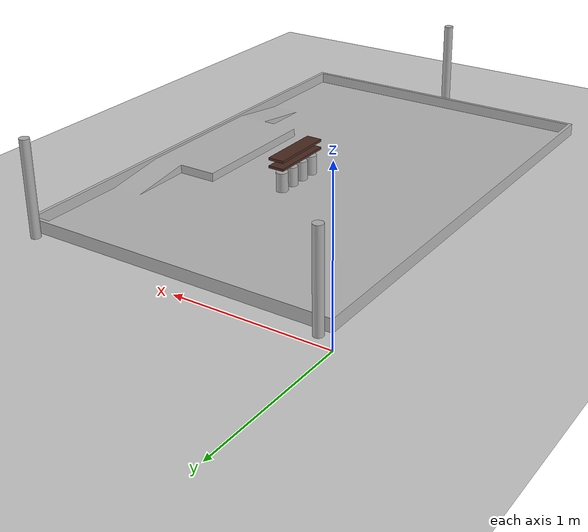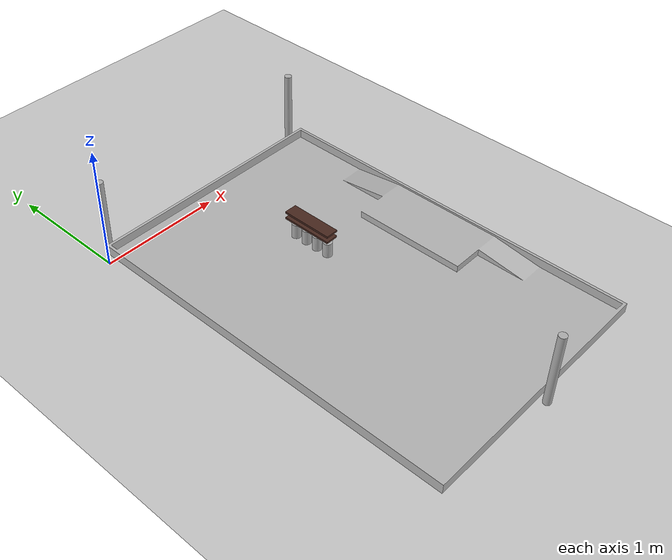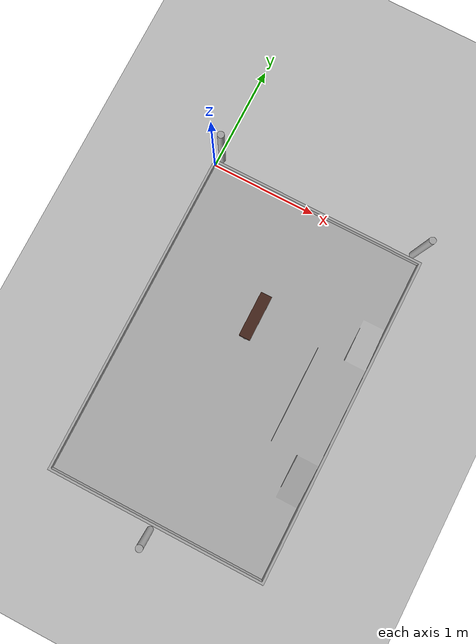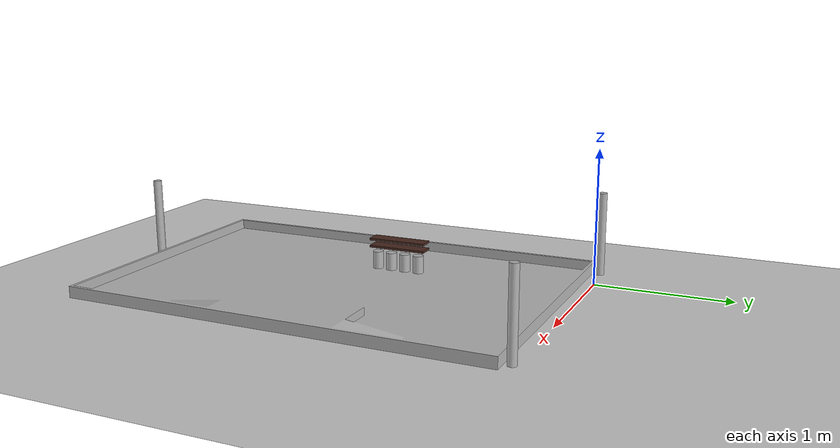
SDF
<sdf version="1.10">
 <world name="empty">
  <scene>
   <shadows>false</shadows>
   <ambient>0.400000006 0.400000006 0.400000006 1</ambient>
   <background>0.699999988 0.699999988 0.699999988 1</background>
  </scene>
  <physics name="1ms" type="ignored">
   <max_step_size>0.001</max_step_size>
   <real_time_factor>1.0</real_time_factor>
   <real_time_update_rate>25</real_time_update_rate>
  </physics>
  <plugin name="gz::sim::systems::Physics" filename="gz-sim-physics-system"/>
  <plugin name="gz::sim::systems::UserCommands" filename="gz-sim-user-commands-system"/>
  <plugin name="gz::sim::systems::SceneBroadcaster" filename="gz-sim-scene-broadcaster-system"/>
  <plugin name="gz::sim::systems::Sensors" filename="gz-sim-sensors-system">
   <render_engine>ogre2</render_engine>
  </plugin>
  <plugin name="gz::sim::systems::Contact" filename="gz-sim-contact-system"/>
  <gravity>0 0 -9.8000000000000007</gravity>
  <magnetic_field>5.5644999999999998e-06 2.2875799999999999e-05 -4.2388400000000002e-05</magnetic_field>
  <atmosphere type="adiabatic"/>
  <model name="ground_plane">
   <static>true</static>
   <link name="link">
    <collision name="collision">
     <geometry><plane><normal>0 0 1</normal><size>100 100</size></plane></geometry>
    </collision>
    <visual name="visual">
     <geometry><plane><normal>0 0 1</normal><size>100 100</size></plane></geometry>
     <material>
      <ambient>0.800000012 0.800000012 0.800000012 1</ambient>
      <diffuse>0.800000012 0.800000012 0.800000012 1</diffuse>
      <specular>0.800000012 0.800000012 0.800000012 1</specular>
     </material>
    </visual>
    <inertial>
     <mass>1</mass>
     <inertia><ixx>1</ixx><ixy>0</ixy><ixz>0</ixz><iyy>1</iyy><iyz>0</iyz><izz>1</izz></inertia>
    </inertial>
   </link>
  </model>
  <model name="box11">
   <pose>0.97 -1.11 0.4 0.0 0.0 1.57</pose>
   <link name="grip_link">
    <inertial>
     <inertia><ixx>2.98e-4</ixx><ixy>0</ixy><ixz>0</ixz><iyy>4.67e-3</iyy><iyz>0</iyz><izz>4.95e-3</izz></inertia>
     <mass>0.35</mass>
    </inertial>
    <collision name="box11_collision"><geometry><box><size>0.4 0.1 0.015</size></box></geometry></collision>
    <visual name="box11_visual">
     <geometry><box><size>0.4 0.1 0.015</size></box></geometry>
     <material>
      <ambient>0.29 0.16 0.12 1</ambient>
      <diffuse>0.29 0.16 0.12 1</diffuse>
      <specular>1 1 1 1</specular>
     </material>
    </visual>
   </link>
   <static>false</static>
  </model>
  <model name="box12">
   <pose>0.97 -1.11 0.45 0.0 0.0 1.57</pose>
   <link name="grip_link">
    <inertial>
     <inertia><ixx>2.98e-4</ixx><ixy>0</ixy><ixz>0</ixz><iyy>4.67e-3</iyy><iyz>0</iyz><izz>4.95e-3</izz></inertia>
     <mass>0.35</mass>
    </inertial>
    <collision name="box12_collision"><geometry><box><size>0.4 0.1 0.015</size></box></geometry></collision>
    <visual name="box12_visual">
     <geometry><box><size>0.4 0.1 0.015</size></box></geometry>
     <material>
      <ambient>0.29 0.16 0.12 1</ambient>
      <diffuse>0.29 0.16 0.12 1</diffuse>
      <specular>1 1 1 1</specular>
     </material>
    </visual>
   </link>
  </model>
  <model name="cylinder11">
   <pose>0.97 -0.97 0.3 0.0 0.0 0.0</pose>
   <link name="grip_link">
    <inertial>
     <inertia><ixx>8.27e-5</ixx><ixy>0</ixy><ixz>0</ixz><iyy>8.27e-5</iyy><iyz>0</iyz><izz>3.564e-5</izz></inertia>
     <mass>0.055</mass>
    </inertial>
    <collision name="cylinder1_collision">
     <geometry><cylinder><radius>0.036</radius><length>0.1195</length></cylinder></geometry>
    </collision>
    <visual name="cylinder1_visual">
     <geometry><cylinder><radius>0.036</radius><length>0.119</length></cylinder></geometry>
     <material>
      <ambient>0.300000012 0.300000012 0.300000012 1</ambient>
      <diffuse>0.699999988 0.699999988 0.699999988 1</diffuse>
      <specular>1 1 1 1</specular>
     </material>
    </visual>
   </link>
   <static>false</static>
  </model>
  <model name="cylinder12">
   <pose>0.97 -1.07 0.3 0.0 0.0 0.0</pose>
   <link name="grip_link">
    <inertial>
     <inertia><ixx>8.27e-5</ixx><ixy>0</ixy><ixz>0</ixz><iyy>8.27e-5</iyy><iyz>0</iyz><izz>3.564e-5</izz></inertia>
     <mass>0.055</mass>
    </inertial>
    <collision name="cylinder2_collision">
     <geometry><cylinder><radius>0.036</radius><length>0.119</length></cylinder></geometry>
    </collision>
    <visual name="cylinder2_visual">
     <geometry><cylinder><radius>0.036</radius><length>0.119</length></cylinder></geometry>
     <material>
      <ambient>0.300000012 0.300000012 0.300000012 1</ambient>
      <diffuse>0.699999988 0.699999988 0.699999988 1</diffuse>
      <specular>1 1 1 1</specular>
     </material>
    </visual>
   </link>
  </model>
  <model name="cylinder13">
   <pose>0.97 -1.17 0.3 0.0 0.0 0.0</pose>
   <link name="grip_link">
    <inertial>
     <inertia><ixx>8.27e-5</ixx><ixy>0</ixy><ixz>0</ixz><iyy>8.27e-5</iyy><iyz>0</iyz><izz>3.564e-5</izz></inertia>
     <mass>0.055</mass>
    </inertial>
    <collision name="cylinder3_collision">
     <geometry><cylinder><radius>0.036</radius><length>0.119</length></cylinder></geometry>
    </collision>
    <visual name="cylinder3_visual">
     <geometry><cylinder><radius>0.036</radius><length>0.119</length></cylinder></geometry>
     <material>
      <ambient>0.300000012 0.300000012 0.300000012 1</ambient>
      <diffuse>0.699999988 0.699999988 0.699999988 1</diffuse>
      <specular>1 1 1 1</specular>
     </material>
    </visual>
   </link>
  </model>
  <model name="cylinder14">
   <pose>0.97 -1.27 0.3 0.0 0.0 0.0</pose>
   <link name="grip_link">
    <inertial>
     <inertia><ixx>8.27e-5</ixx><ixy>0</ixy><ixz>0</ixz><iyy>8.27e-5</iyy><iyz>0</iyz><izz>3.564e-5</izz></inertia>
     <mass>0.055</mass>
    </inertial>
    <collision name="cylinder4_collision">
     <geometry><cylinder><radius>0.036</radius><length>0.119</length></cylinder></geometry>
    </collision>
    <visual name="cylinder4_visual">
     <geometry><cylinder><radius>0.036</radius><length>0.119</length></cylinder></geometry>
     <material>
      <ambient>0.300000012 0.300000012 0.300000012 1</ambient>
      <diffuse>0.699999988 0.699999988 0.699999988 1</diffuse>
      <specular>1 1 1 1</specular>
     </material>
    </visual>
   </link>
  </model>
  <model name="mayak1">
   <pose>1.0 -3.1 0.4 0.0 0.0 0.0</pose>
   <static>true</static>
   <link name="mayak1_link">
    <inertial>
     <inertia><ixx>8.27e-5</ixx><ixy>0</ixy><ixz>0</ixz><iyy>8.27e-5</iyy><iyz>0</iyz><izz>3.564e-5</izz></inertia>
     <mass>5</mass>
    </inertial>
    <collision name="mayak1_collision">
     <geometry><cylinder><radius>0.03</radius><length>0.6</length></cylinder></geometry>
    </collision>
    <visual name="mayak1_visual">
     <geometry><cylinder><radius>0.03</radius><length>0.6</length></cylinder></geometry>
     <material>
      <ambient>0.300000012 0.300000012 0.300000012 1</ambient>
      <diffuse>0.699999988 0.699999988 0.699999988 1</diffuse>
      <specular>1 1 1 1</specular>
     </material>
    </visual>
   </link>
  </model>
  <model name="mayak2">
   <pose>0.05 0.05 0.4 0.0 0.0 0.0</pose>
   <static>true</static>
   <link name="mayak2_link">
    <inertial>
     <inertia><ixx>8.27e-5</ixx><ixy>0</ixy><ixz>0</ixz><iyy>8.27e-5</iyy><iyz>0</iyz><izz>3.564e-5</izz></inertia>
     <mass>5</mass>
    </inertial>
    <collision name="mayak2_collision">
     <geometry><cylinder><radius>0.03</radius><length>0.6</length></cylinder></geometry>
    </collision>
    <visual name="mayak2_visual">
     <geometry><cylinder><radius>0.03</radius><length>0.6</length></cylinder></geometry>
     <material>
      <ambient>0.300000012 0.300000012 0.300000012 1</ambient>
      <diffuse>0.699999988 0.699999988 0.699999988 1</diffuse>
      <specular>1 1 1 1</specular>
     </material>
    </visual>
   </link>
  </model>
  <model name="mayak3">
   <pose>1.95 0.05 0.4 0.0 0.0 0.0</pose>
   <static>true</static>
   <link name="mayak3_link">
    <inertial>
     <inertia><ixx>8.27e-5</ixx><ixy>0</ixy><ixz>0</ixz><iyy>8.27e-5</iyy><iyz>0</iyz><izz>3.564e-5</izz></inertia>
     <mass>5</mass>
    </inertial>
    <collision name="mayak3_collision">
     <geometry><cylinder><radius>0.03</radius><length>0.6</length></cylinder></geometry>
    </collision>
    <visual name="mayak3_visual">
     <geometry><cylinder><radius>0.03</radius><length>0.6</length></cylinder></geometry>
     <material>
      <ambient>0.300000012 0.300000012 0.300000012 1</ambient>
      <diffuse>0.699999988 0.699999988 0.699999988 1</diffuse>
      <specular>1 1 1 1</specular>
     </material>
    </visual>
   </link>
  </model>
  <model name="map_1">
   <pose>0.0 0.0 0.1 1.57 0.0 0.0</pose>
   <static>true</static>
   <link name="map_link">
    <inertial>
     <inertia><ixx>1.0</ixx><ixy>0</ixy><ixz>0</ixz><iyy>1.0</iyy><iyz>0</iyz><izz>1.0</izz></inertia>
     <mass>100</mass>
    </inertial>
    <collision name="map_collision">
     <geometry>
      <mesh><uri>file:///eurobot_2025/src/shesnar/worlds/collision.obj</uri><scale>0.1 0.1 0.1</scale></mesh>
     </geometry>
    </collision>
    <visual name="map_visual">
     <geometry>
      <mesh><uri>file:///eurobot_2025/src/shesnar/worlds/actual_field.obj</uri><scale>0.1 0.1 0.1</scale></mesh>
     </geometry>
    </visual>
   </link>
  </model>
  <light name="sun" type="directional">
   <pose>0 0 10 0 0 0</pose>
   <intensity>1</intensity>
   <direction>-0.5 0.10000000000000001 -0.90000000000000002</direction>
   <diffuse>0.800000012 0.800000012 0.800000012 1</diffuse>
   <specular>0.200000003 0.200000003 0.200000003 1</specular>
   <attenuation>
    <range>1000</range>
    <linear>0.01</linear>
    <constant>0.90000000000000002</constant>
    <quadratic>0.001</quadratic>
   </attenuation>
   <spot><inner_angle>0</inner_angle><outer_angle>0</outer_angle><falloff>0</falloff></spot>
  </light>
 </world>
</sdf>
